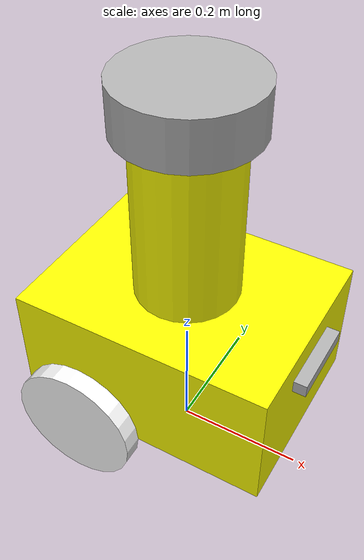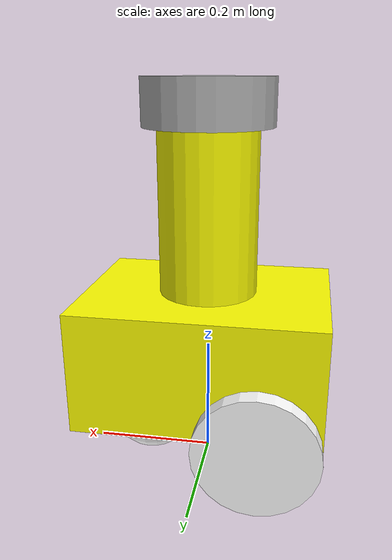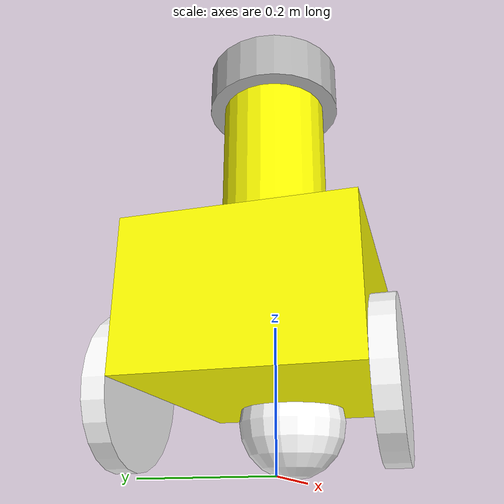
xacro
<?xml version="1.0" ?>
<robot name="simrobo" xmlns:xacro="http://www.ros.org/wiki/xacro">
  <!-- include xacro files -->
  <xacro:include filename="$(find simrobo_description)/urdf/body/body.urdf.xacro" />
  <xacro:include filename="$(find simrobo_description)/urdf/wheel/wheel.urdf.xacro" />
  <xacro:include filename="$(find simrobo_description)/urdf/wheel/caster.urdf.xacro" />
  <xacro:include filename="$(find simrobo_description)/urdf/sensors/velodyne.urdf.xacro" />
  <xacro:include filename="$(find simrobo_description)/urdf/sensors/imu.urdf.xacro" />
  <xacro:include filename="$(find simrobo_description)/urdf/sensors/gps.urdf.xacro" />
  <xacro:include filename="$(find simrobo_description)/urdf/sensors/camera.urdf.xacro" />
  <xacro:include filename="$(find simrobo_description)/urdf/simrobo.ros2_control.xacro" />

  <!-- property -->
  <xacro:property name="body_depth" value="0.4"/>
  <xacro:property name="body_width" value="0.3"/>
  <xacro:property name="body_height" value="0.2"/>
  <xacro:property name="body_mass" value="1"/>
  <xacro:property name="wheel_radius" value="0.1"/>
  <xacro:property name="wheel_clearance" value="0.03"/>
  <xacro:property name="wheel_mass" value="0.4"/>
  <xacro:property name="wheel_joint_x" value="-0.1"/>
  <xacro:property name="caster_radius" value="0.08"/>
  <xacro:property name="caster_mass" value="0.2"/>
  <xacro:property name="caster_joint_x" value="0.1"/>
  <xacro:property name="lidar_mount_mass" value="0.4"/>
  <xacro:property name="lidar_radius" value="0.103"/>
  <xacro:property name="lidar_length" value="0.0727"/>
  <xacro:property name="lidar_mass" value="0.830"/>
  <xacro:property name="imu_length" value="0.02"/>
  <xacro:property name="imu_height" value="0.01"/>
  <xacro:property name="imu_mass" value="0.01"/>
  <xacro:property name="gps_length" value="0.02"/>
  <xacro:property name="gps_height" value="0.01"/>
  <xacro:property name="gps_mass" value="0.01"/>
  <xacro:property name="camera_depth" value="0.02"/>
  <xacro:property name="camera_width" value="0.12"/>
  <xacro:property name="camera_height" value="0.02"/>
  <xacro:property name="camera_mass" value="0.1"/>
  <xacro:property name="camera_pos_z" value="0.15"/>

  <!-- ======== Body Description ======== -->
  <link name="base_footprint"/>
  <xacro:body name="base_link" depth="${body_depth}" width="${body_width}" height="${body_height}" mass="${body_mass}">
    <origin xyz="0 0 ${wheel_radius}" rpy="0 0 0"/>
  </xacro:body>

  <!-- ======== Wheel Description ======== -->
  <xacro:wheel name="left" parent="base_link" radius="${wheel_radius}" clearance="${wheel_clearance}" mass="${wheel_mass}">
    <origin xyz="${wheel_joint_x} ${body_width/2+wheel_clearance/2} 0" rpy="${-pi/2} 0 0"/>
  </xacro:wheel>
  <xacro:wheel name="right" parent="base_link" radius="${wheel_radius}" clearance="${wheel_clearance}" mass="${wheel_mass}">
    <origin xyz="${wheel_joint_x} ${-body_width/2-wheel_clearance/2} 0" rpy="${-pi/2} 0 0"/>
  </xacro:wheel>
  <xacro:caster name="front" parent="base_link" radius="${caster_radius}" mass="${caster_mass}">
    <origin xyz="${caster_joint_x} 0 ${-wheel_radius+caster_radius}" rpy="0 0 0"/>
  </xacro:caster>

  <!-- ======== Sensors Description ======== -->
  <link name="lidar_mount">
    <inertial>
      <origin xyz="0 0 0" rpy="0 0 0"/>
      <mass value="${lidar_mount_mass}"/>
      <inertia ixx="${lidar_mount_mass/12*(3*0.08*0.08+0.3*0.3)}" ixy="0" ixz="0"
               iyx="0" iyy="${lidar_mount_mass/12*(3*0.08*0.08+0.3*0.3)}" iyz="0.0"
               izx="0" izy="0" izz="${lidar_mount_mass/2*0.08*0.08}"/>
    </inertial>
    <visual>
      <origin xyz="0 0 0" rpy="0 0 0"/>
      <geometry>
        <cylinder radius="0.08" length="0.3"/>
      </geometry>
      <material name="lidar_mount_color">
        <color rgba="1.0 1.0 0.0 1.0"/>
      </material>
    </visual>
    <collision>
      <origin xyz="0 0 0" rpy="0 0 0"/>
      <geometry>
        <cylinder  radius="0.08" length="0.3"/>
      </geometry>
    </collision>
  </link>
  <joint name="lidar_mount_joint" type="fixed">
    <origin xyz="0 0 ${body_height+0.3/2}" rpy="0 0 0"/>
    <parent link="base_link"/>
    <child link="lidar_mount"/>
  </joint>

  <xacro:velodyne name="velodyne" parent="lidar_mount" radius="${lidar_radius}" length="${lidar_length}" mass="${lidar_mass}">
    <origin xyz="0 0 0.15" rpy="0 0 0"/>
  </xacro:velodyne>
  <xacro:imu name="imu" parent="base_link" length="${imu_length}" height="${imu_height}" mass="${imu_mass}">
    <origin xyz="0 0 ${body_height/2}" rpy="0 0 0"/>
  </xacro:imu>
  <xacro:gps name="gps" parent="base_link" length="${gps_length}" height="${gps_height}" mass="${gps_mass}">
    <origin xyz="0 0 ${body_height/3}" rpy="0 0 0"/>
  </xacro:gps>
  <xacro:camera name="camera" parent="base_link" depth="${camera_depth}" width="${camera_width}" height="${camera_height}" mass="${camera_mass}">
    <origin xyz="${(body_depth+camera_depth)/2} 0 ${camera_pos_z}" rpy="0 0 0"/>
  </xacro:camera>

  <!-- ======== ros2_control ======== -->
  <xacro:simrobo_ros2_control name="simrobo"/>

</robot>

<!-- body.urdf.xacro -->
<robot name="body" xmlns:xacro="http://www.ros.org/wiki/xacro">

  <xacro:macro name="body" params="name depth width height mass *origin">

    <link name="${name}">
      <inertial>
        <origin xyz="0 0 0" rpy="0 0 0"/>
        <mass value="${mass}" />
        <inertia ixx="${mass/12*(width*width+height*height)}" ixy="0" ixz="0"
                 iyx="0" iyy="${mass/12*(depth*depth+height*height)}" iyz="0"
                 izx="0" izy="0" izz="${mass/12*(depth*depth+width*width)}"/>
      </inertial>
      <visual>
        <origin xyz="0 0 ${height/2}" rpy="0 0 0"/>
        <geometry>
          <box size="${depth} ${width} ${height}"/>
        </geometry>
        <material name="body_color">
          <color rgba="1.0 1.0 0.0 1.0"/>
        </material>
      </visual>
      <collision>
        <origin xyz="0 0 ${height/2}" rpy="0 0 0"/>
        <geometry>
          <box size="${depth} ${width} ${height}"/>
        </geometry>
      </collision>
    </link>

    <gazebo reference="${name}">
      <material>Gazebo/Yellow</material>
      <mu1 value="0.8"/>
      <mu2 value="0.8"/>
      <kp value="10000000.0"/>
      <kd value="1.0"/>
      <fdir1 value="0 1 0"/>
    </gazebo>

    <joint name="body_joint" type="fixed">
      <xacro:insert_block name="origin"/>
      <parent link="base_footprint"/>
      <child link="${name}"/>
      <axis xyz="0.0 0.0 1.0"/>
    </joint>
  </xacro:macro>
</robot>

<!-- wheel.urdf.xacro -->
<robot name="wheel" xmlns:xacro="http://www.ros.org/wiki/xacro">
  <xacro:include filename="$(find simrobo_description)/urdf/wheel/wheel.gazebo.xacro" />

  <xacro:macro name="wheel" params="name parent radius clearance mass *origin">
    <material name="${name}_wheel_color">
      <color rgba="1.0 1.0 1.0 1.0"/>
    </material>

    <link name="${name}_wheel_link">
      <inertial>
        <origin xyz="0 0 0" rpy="0 0 0"/>
        <mass value="${mass}"/>
        <inertia ixx="${mass/12*(3*radius*radius+clearance*clearance)}" ixy="0" ixz="0"
                 iyx="0" iyy="${mass/12*(3*radius*radius+clearance*clearance)}" iyz="0"
                 izx="0" izy="0" izz="${mass/2*radius*radius}"/>
      </inertial>
      <visual>
        <origin xyz="0 0 0" rpy="0 0 0"/>
        <geometry>
          <cylinder radius="${radius}" length="${clearance}"/>
        </geometry>
        <material name="${name}_wheel_color"/>
      </visual>
      <collision>
        <origin rpy="0 0 0" xyz="0 0 0"/>
        <geometry>
          <cylinder radius="${radius}" length="${clearance}"/>
        </geometry>
      </collision>
    </link>

    <joint name="${name}_wheel_joint" type="continuous">
      <xacro:insert_block name="origin"/>
      <parent link="${parent}"/>
      <child link="${name}_wheel_link"/>
      <axis xyz="0.0 0.0 1.0"/>
    </joint>

    <!-- Gazebo Plugin -->
    <xacro:wheel_gazebo name="${name}"/>
  </xacro:macro>
</robot>

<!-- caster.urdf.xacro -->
<robot name="caster" xmlns:xacro="http://www.ros.org/wiki/xacro">
  <xacro:include filename="$(find simrobo_description)/urdf/wheel/caster.gazebo.xacro" />

  <xacro:macro name="caster" params="name parent radius mass *origin">
    <material name="${name}_caster_color">
      <color rgba="1.0 1.0 1.0 1.0"/>
    </material>

    <link name="${name}_caster_link">
      <inertial>
        <origin xyz="0 0 0" rpy="0 0 0"/>
        <mass value="${mass}"/>
        <inertia ixx="${2/5*mass*radius*radius}" ixy="0" ixz="0"
                 iyx="0" iyy="${2/5*mass*radius*radius}" iyz="0"
                 izx="0" izy="0" izz="${2/5*mass*radius*radius}"/>
      </inertial>
      <visual>
        <origin xyz="0 0 0" rpy="0 0 0"/>
        <geometry>
          <sphere radius="${radius}"/>
        </geometry>
        <material name="${name}_caster_color"/>
      </visual>
      <collision>
        <origin rpy="0 0 0" xyz="0 0 0"/>
        <geometry>
          <sphere radius="${radius}"/>
        </geometry>
      </collision>
    </link>

    <joint name="${name}_caster_joint" type="fixed">
      <xacro:insert_block name="origin"/>
      <parent link="${parent}"/>
      <child link="${name}_caster_link"/>
      <axis xyz="0.0 0.0 1.0"/>
    </joint>

    <!-- Gazebo Plugin -->
    <xacro:caster_gazebo name="${name}"/>
  </xacro:macro>
</robot>

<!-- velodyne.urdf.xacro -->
<robot name="velodyne" xmlns:xacro="http://www.ros.org/wiki/xacro">
  <xacro:include filename="$(find simrobo_description)/urdf/sensors/velodyne.gazebo.xacro"/>

  <xacro:macro name="velodyne" params="name:=velodyne parent radius length mass *origin">
    <material name="${name}_color">
      <color rgba="0.70196 0.70196 0.70196 1.0"/>
    </material>

    <link name="${name}">
      <inertial>
        <origin xyz="0 0 0" rpy="0 0 0"/>
        <mass value="${mass}"/>
        <inertia ixx="${mass/12*(3*radius*radius+length*length)}" ixy="0" ixz="0"
                 iyx="0" iyy="${mass/12*(3*radius*radius+length*length)}" iyz="0.0"
                 izx="0" izy="0" izz="${mass/2*radius*radius}"/>
      </inertial>
      <visual>
        <origin xyz="0 0 0" rpy="0 0 0"/>
        <geometry>
          <cylinder radius="${radius}" length="${length}"/>
        </geometry>
        <material name="${name}_color"/>
      </visual>
      <collision>
        <origin xyz="0 0 0" rpy="0 0 0"/>
        <geometry>
          <cylinder  radius="${radius}" length="${length}"/>
        </geometry>
      </collision>
    </link>

    <joint name="${name}_joint" type="fixed">
      <xacro:insert_block name="origin"/>
      <parent link="${parent}"/>
      <child link="${name}"/>
    </joint>

    <!-- Gazebo Plugin -->
    <xacro:velodyne_gazebo name="${name}"/>

  </xacro:macro>
</robot>

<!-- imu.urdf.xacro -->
<robot name="imu" xmlns:xacro="http://www.ros.org/wiki/xacro">
  <xacro:include filename="$(find simrobo_description)/urdf/sensors/imu.gazebo.xacro"/>

  <xacro:macro name="imu" params="name length height mass parent *origin">
    <material name="${name}_color">
      <color rgba="1.0 0.0 0.0 1.0"/>
    </material>

    <link name="${name}_link">
      <inertial>
        <origin xyz="0 0 0" rpy="0 0 0"/>
        <mass value="${mass}" />
        <inertia ixx="${mass/6*length*length}" ixy="0" ixz="0"
                 iyx="0" iyy="${mass/12*(height*height+length*length)}" iyz="0"
                 izx="0" izy="0" izz="${mass/12*(height*height+length*length)}"/>
      </inertial>
      <visual>
        <origin xyz="0 0 0" rpy="0 0 0"/>
        <geometry>
          <box size="${length} ${length} ${height}"/>
        </geometry>
        <material name="${name}_color"/>
      </visual>
      <collision>
        <origin xyz="0 0 0" rpy="0 0 0"/>
        <geometry>
          <box size="${length} ${length} ${height}"/>
        </geometry>
      </collision>
    </link>

    <joint name="${name}_joint" type="fixed">
      <xacro:insert_block name="origin"/>
      <parent link="${parent}"/>
      <child link="${name}_link"/>
    </joint>

    <!-- Gazebo Plugin -->
    <xacro:imu_gazebo name="${name}"/>

  </xacro:macro>
</robot>

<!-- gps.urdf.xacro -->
<robot name="gps" xmlns:xacro="http://www.ros.org/wiki/xacro">
  <xacro:include filename="$(find simrobo_description)/urdf/sensors/gps.gazebo.xacro"/>

  <xacro:macro name="gps" params="name length height mass parent *origin">
    <material name="${name}_color">
      <color rgba="1.0 0.0 0.0 1.0"/>
    </material>

    <link name="${name}_link">
      <inertial>
        <origin xyz="0 0 0" rpy="0 0 0"/>
        <mass value="${mass}" />
        <inertia ixx="${mass/6*length*length}" ixy="0" ixz="0"
                 iyx="0" iyy="${mass/12*(height*height+length*length)}" iyz="0"
                 izx="0" izy="0" izz="${mass/12*(height*height+length*length)}"/>
      </inertial>
      <visual>
        <origin xyz="0 0 0" rpy="0 0 0"/>
        <geometry>
          <box size="${length} ${length} ${height}"/>
        </geometry>
        <material name="${name}_color"/>
      </visual>
      <collision>
        <origin xyz="0 0 0" rpy="0 0 0"/>
        <geometry>
          <box size="${length} ${length} ${height}"/>
        </geometry>
      </collision>
    </link>

    <joint name="${name}_joint" type="fixed">
      <xacro:insert_block name="origin"/>
      <parent link="${parent}"/>
      <child link="${name}_link"/>
    </joint>

    <!-- Gazebo Plugin -->
    <xacro:gps_gazebo name="${name}"/>

  </xacro:macro>
</robot>

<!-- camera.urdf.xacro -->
<robot name="camera" xmlns:xacro="http://www.ros.org/wiki/xacro">
  <xacro:include filename="$(find simrobo_description)/urdf/sensors/camera.gazebo.xacro"/>

  <xacro:macro name="camera" params="name use_ignition:=true depth width height mass parent *origin">
    <material name="${name}_color">
      <color rgba="0.70196 0.70196 0.70196 1.0"/>
    </material>

    <link name="${name}_link">
      <inertial>
        <origin xyz="0 0 0" rpy="0 0 0"/>
        <mass value="${mass}" />
        <inertia ixx="${mass/12*(width*width+height*height)}" ixy="0" ixz="0"
                 iyx="0" iyy="${mass/12*(depth*depth+height*height)}" iyz="0"
                 izx="0" izy="0" izz="${mass/12*(depth*depth+width*width)}"/>
      </inertial>
      <visual>
        <origin xyz="0 0 0" rpy="0 0 0"/>
        <geometry>
          <box size="${depth} ${width} ${height}"/>
        </geometry>
        <material name="${name}_color"/>
      </visual>
      <collision>
        <origin xyz="0 0 0" rpy="0 0 0"/>
        <geometry>
          <box size="${depth} ${width} ${height}"/>
        </geometry>
      </collision>
    </link>

    <joint name="${name}_joint" type="fixed">
      <xacro:insert_block name="origin"/>
      <parent link="${parent}"/>
      <child link="${name}_link"/>
    </joint>

    <!-- Gazebo Plugin -->
    <xacro:camera_gazebo name="${name}" use_ignition="${use_ignition}"/>

  </xacro:macro>
</robot>
